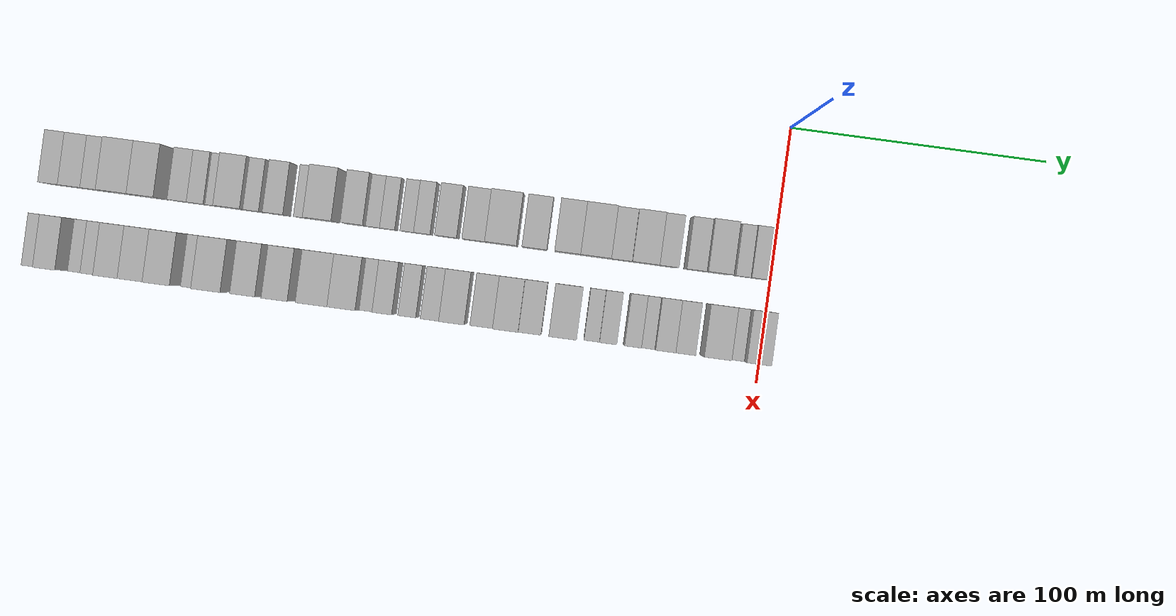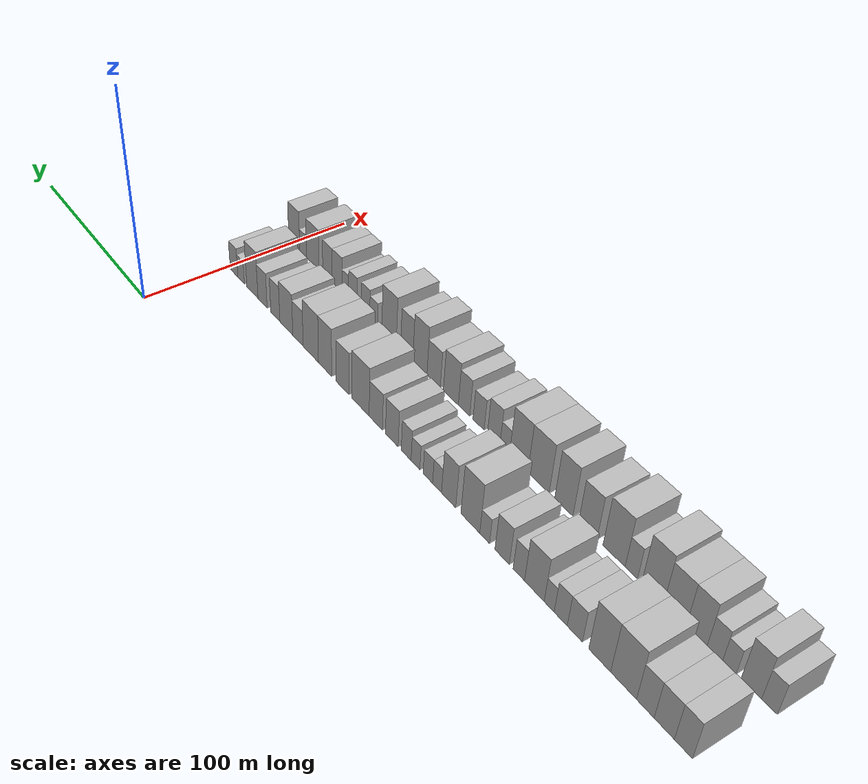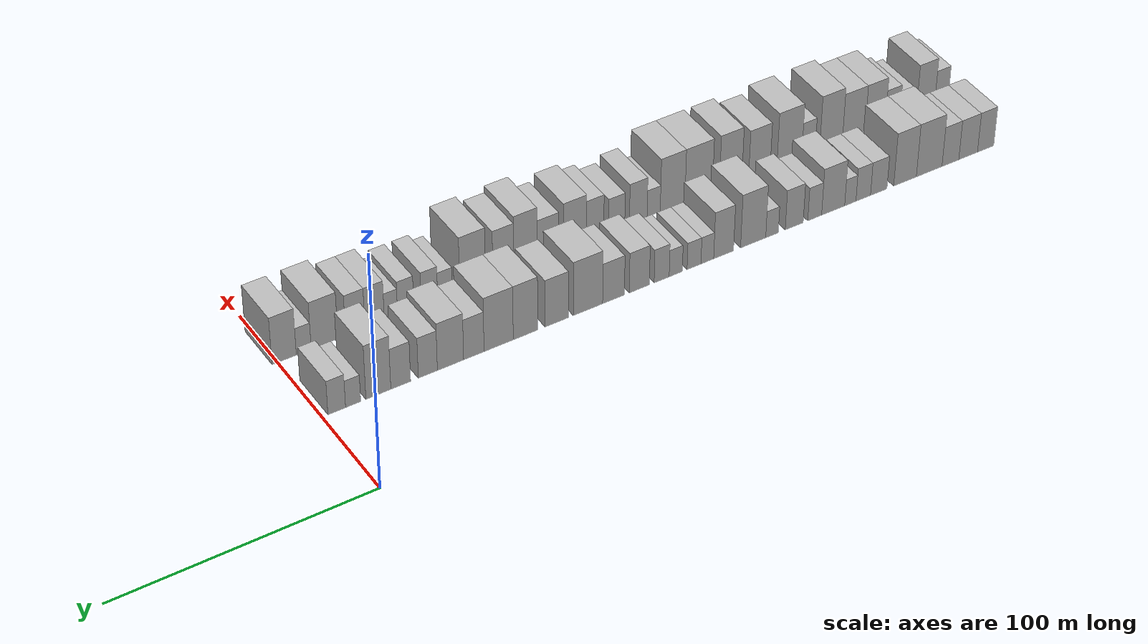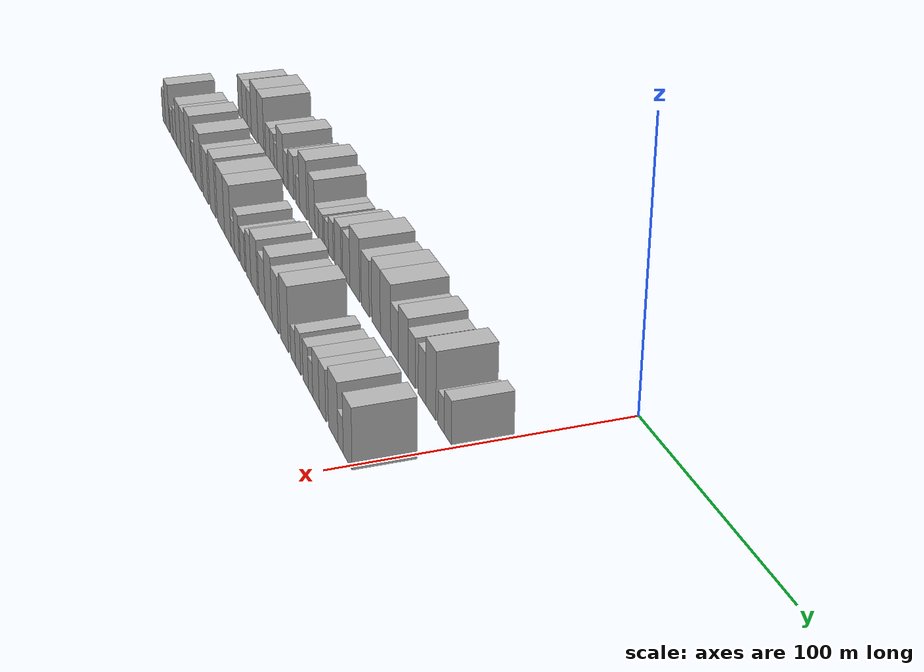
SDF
<sdf version="1.6">
 <world name="default">
  <model name="building_1">
   <static>1</static>
   <pose>50.0000 -277.2556 0 0.000000 0.000000 0.000000</pose>
   <link name="link">
    <pose>0 0 9.00 0 0 0</pose>
    <collision name="collision"><geometry><box><size>20.0000 7.4887 18.0000</size></box></geometry></collision>
    <visual name="visual">
     <cast_shadows>0</cast_shadows>
     <geometry><box><size>20.0000 7.4887 18.0000</size></box></geometry>
     <material>
      <script>
       <uri>model://HANNAS_wall/materials/scripts</uri>
       <uri>model://HANNAS_wall/materials/textures</uri>
       <name>vrc/HANNAS_wall</name>
      </script>
     </material>
    </visual>
   </link>
  </model>
  <model name="building_2">
   <static>1</static>
   <pose>50.0000 -269.2363 0 0.000000 0.000000 0.000000</pose>
   <link name="link">
    <pose>0 0 9.00 0 0 0</pose>
    <collision name="collision"><geometry><box><size>20.0000 8.5500 18.0000</size></box></geometry></collision>
    <visual name="visual">
     <cast_shadows>0</cast_shadows>
     <geometry><box><size>20.0000 8.5500 18.0000</size></box></geometry>
     <material>
      <script>
       <uri>model://HANNAS_wall/materials/scripts</uri>
       <uri>model://HANNAS_wall/materials/textures</uri>
       <name>vrc/HANNAS_wall</name>
      </script>
     </material>
    </visual>
   </link>
  </model>
  <model name="building_3">
   <static>1</static>
   <pose>50.0000 -261.1356 0 0.000000 0.000000 0.000000</pose>
   <link name="link">
    <pose>0 0 9.00 0 0 0</pose>
    <collision name="collision"><geometry><box><size>20.0000 7.6514 18.0000</size></box></geometry></collision>
    <visual name="visual">
     <cast_shadows>0</cast_shadows>
     <geometry><box><size>20.0000 7.6514 18.0000</size></box></geometry>
     <material>
      <script>
       <uri>model://HANNAS_wall/materials/scripts</uri>
       <uri>model://HANNAS_wall/materials/textures</uri>
       <name>vrc/HANNAS_wall</name>
      </script>
     </material>
    </visual>
   </link>
  </model>
  <model name="building_4">
   <static>1</static>
   <pose>50.0000 -251.5059 0 0.000000 0.000000 0.000000</pose>
   <link name="link">
    <pose>0 0 12.00 0 0 0</pose>
    <collision name="collision"><geometry><box><size>20.0000 11.6080 24.0000</size></box></geometry></collision>
    <visual name="visual">
     <cast_shadows>0</cast_shadows>
     <geometry><box><size>20.0000 11.6080 24.0000</size></box></geometry>
     <material>
      <script>
       <uri>model://HANNAS_wall/materials/scripts</uri>
       <uri>model://HANNAS_wall/materials/textures</uri>
       <name>vrc/HANNAS_wall</name>
      </script>
     </material>
    </visual>
   </link>
  </model>
  <model name="building_5">
   <static>1</static>
   <pose>50.0000 -240.6111 0 0.000000 0.000000 0.000000</pose>
   <link name="link">
    <pose>0 0 12.00 0 0 0</pose>
    <collision name="collision"><geometry><box><size>20.0000 10.1817 24.0000</size></box></geometry></collision>
    <visual name="visual">
     <cast_shadows>0</cast_shadows>
     <geometry><box><size>20.0000 10.1817 24.0000</size></box></geometry>
     <material>
      <script>
       <uri>model://HANNAS_wall/materials/scripts</uri>
       <uri>model://HANNAS_wall/materials/textures</uri>
       <name>vrc/HANNAS_wall</name>
      </script>
     </material>
    </visual>
   </link>
  </model>
  <model name="building_6">
   <static>1</static>
   <pose>50.0000 -228.8419 0 0.000000 0.000000 0.000000</pose>
   <link name="link">
    <pose>0 0 7.50 0 0 0</pose>
    <collision name="collision"><geometry><box><size>20.0000 7.3566 15.0000</size></box></geometry></collision>
    <visual name="visual">
     <cast_shadows>0</cast_shadows>
     <geometry><box><size>20.0000 7.3566 15.0000</size></box></geometry>
     <material>
      <script>
       <uri>model://HANNAS_wall/materials/scripts</uri>
       <uri>model://HANNAS_wall/materials/textures</uri>
       <name>vrc/HANNAS_wall</name>
      </script>
     </material>
    </visual>
   </link>
  </model>
  <model name="building_7">
   <static>1</static>
   <pose>50.0000 -221.9343 0 0.000000 0.000000 0.000000</pose>
   <link name="link">
    <pose>0 0 7.50 0 0 0</pose>
    <collision name="collision"><geometry><box><size>20.0000 6.4588 15.0000</size></box></geometry></collision>
    <visual name="visual">
     <cast_shadows>0</cast_shadows>
     <geometry><box><size>20.0000 6.4588 15.0000</size></box></geometry>
     <material>
      <script>
       <uri>model://HANNAS_wall/materials/scripts</uri>
       <uri>model://HANNAS_wall/materials/textures</uri>
       <name>vrc/HANNAS_wall</name>
      </script>
     </material>
    </visual>
   </link>
  </model>
  <model name="building_8">
   <static>1</static>
   <pose>50.0000 -216.2119 0 0.000000 0.000000 0.000000</pose>
   <link name="link">
    <pose>0 0 6.00 0 0 0</pose>
    <collision name="collision"><geometry><box><size>20.0000 4.9858 12.0000</size></box></geometry></collision>
    <visual name="visual">
     <cast_shadows>0</cast_shadows>
     <geometry><box><size>20.0000 4.9858 12.0000</size></box></geometry>
     <material>
      <script>
       <uri>model://HANNAS_wall/materials/scripts</uri>
       <uri>model://HANNAS_wall/materials/textures</uri>
       <name>vrc/HANNAS_wall</name>
      </script>
     </material>
    </visual>
   </link>
  </model>
  <model name="building_9">
   <static>1</static>
   <pose>50.0000 -208.6545 0 0.000000 0.000000 0.000000</pose>
   <link name="link">
    <pose>0 0 10.50 0 0 0</pose>
    <collision name="collision"><geometry><box><size>20.0000 10.1291 21.0000</size></box></geometry></collision>
    <visual name="visual">
     <cast_shadows>0</cast_shadows>
     <geometry><box><size>20.0000 10.1291 21.0000</size></box></geometry>
     <material>
      <script>
       <uri>model://HANNAS_wall/materials/scripts</uri>
       <uri>model://HANNAS_wall/materials/textures</uri>
       <name>vrc/HANNAS_wall</name>
      </script>
     </material>
    </visual>
   </link>
  </model>
  <model name="building_10">
   <static>1</static>
   <pose>50.0000 -200.5649 0 0.000000 0.000000 0.000000</pose>
   <link name="link">
    <pose>0 0 7.50 0 0 0</pose>
    <collision name="collision"><geometry><box><size>20.0000 6.0502 15.0000</size></box></geometry></collision>
    <visual name="visual">
     <cast_shadows>0</cast_shadows>
     <geometry><box><size>20.0000 6.0502 15.0000</size></box></geometry>
     <material>
      <script>
       <uri>model://HANNAS_wall/materials/scripts</uri>
       <uri>model://HANNAS_wall/materials/textures</uri>
       <name>vrc/HANNAS_wall</name>
      </script>
     </material>
    </visual>
   </link>
  </model>
  <model name="building_11">
   <static>1</static>
   <pose>50.0000 -191.6332 0 0.000000 0.000000 0.000000</pose>
   <link name="link">
    <pose>0 0 9.00 0 0 0</pose>
    <collision name="collision"><geometry><box><size>20.0000 7.8131 18.0000</size></box></geometry></collision>
    <visual name="visual">
     <cast_shadows>0</cast_shadows>
     <geometry><box><size>20.0000 7.8131 18.0000</size></box></geometry>
     <material>
      <script>
       <uri>model://HANNAS_wall/materials/scripts</uri>
       <uri>model://HANNAS_wall/materials/textures</uri>
       <name>vrc/HANNAS_wall</name>
      </script>
     </material>
    </visual>
   </link>
  </model>
  <model name="building_12">
   <static>1</static>
   <pose>50.0000 -182.0046 0 0.000000 0.000000 0.000000</pose>
   <link name="link">
    <pose>0 0 6.00 0 0 0</pose>
    <collision name="collision"><geometry><box><size>20.0000 5.4442 12.0000</size></box></geometry></collision>
    <visual name="visual">
     <cast_shadows>0</cast_shadows>
     <geometry><box><size>20.0000 5.4442 12.0000</size></box></geometry>
     <material>
      <script>
       <uri>model://HANNAS_wall/materials/scripts</uri>
       <uri>model://HANNAS_wall/materials/textures</uri>
       <name>vrc/HANNAS_wall</name>
      </script>
     </material>
    </visual>
   </link>
  </model>
  <model name="building_13">
   <static>1</static>
   <pose>50.0000 -173.8829 0 0.000000 0.000000 0.000000</pose>
   <link name="link">
    <pose>0 0 12.00 0 0 0</pose>
    <collision name="collision"><geometry><box><size>20.0000 10.7992 24.0000</size></box></geometry></collision>
    <visual name="visual">
     <cast_shadows>0</cast_shadows>
     <geometry><box><size>20.0000 10.7992 24.0000</size></box></geometry>
     <material>
      <script>
       <uri>model://HANNAS_wall/materials/scripts</uri>
       <uri>model://HANNAS_wall/materials/textures</uri>
       <name>vrc/HANNAS_wall</name>
      </script>
     </material>
    </visual>
   </link>
  </model>
  <model name="building_14">
   <static>1</static>
   <pose>50.0000 -161.2518 0 0.000000 0.000000 0.000000</pose>
   <link name="link">
    <pose>0 0 10.50 0 0 0</pose>
    <collision name="collision"><geometry><box><size>20.0000 8.4629 21.0000</size></box></geometry></collision>
    <visual name="visual">
     <cast_shadows>0</cast_shadows>
     <geometry><box><size>20.0000 8.4629 21.0000</size></box></geometry>
     <material>
      <script>
       <uri>model://HANNAS_wall/materials/scripts</uri>
       <uri>model://HANNAS_wall/materials/textures</uri>
       <name>vrc/HANNAS_wall</name>
      </script>
     </material>
    </visual>
   </link>
  </model>
  <model name="building_15">
   <static>1</static>
   <pose>50.0000 -154.3283 0 0.000000 0.000000 0.000000</pose>
   <link name="link">
    <pose>0 0 6.00 0 0 0</pose>
    <collision name="collision"><geometry><box><size>20.0000 5.3842 12.0000</size></box></geometry></collision>
    <visual name="visual">
     <cast_shadows>0</cast_shadows>
     <geometry><box><size>20.0000 5.3842 12.0000</size></box></geometry>
     <material>
      <script>
       <uri>model://HANNAS_wall/materials/scripts</uri>
       <uri>model://HANNAS_wall/materials/textures</uri>
       <name>vrc/HANNAS_wall</name>
      </script>
     </material>
    </visual>
   </link>
  </model>
  <model name="building_16">
   <static>1</static>
   <pose>50.0000 -148.7081 0 0.000000 0.000000 0.000000</pose>
   <link name="link">
    <pose>0 0 6.00 0 0 0</pose>
    <collision name="collision"><geometry><box><size>20.0000 5.8562 12.0000</size></box></geometry></collision>
    <visual name="visual">
     <cast_shadows>0</cast_shadows>
     <geometry><box><size>20.0000 5.8562 12.0000</size></box></geometry>
     <material>
      <script>
       <uri>model://HANNAS_wall/materials/scripts</uri>
       <uri>model://HANNAS_wall/materials/textures</uri>
       <name>vrc/HANNAS_wall</name>
      </script>
     </material>
    </visual>
   </link>
  </model>
  <model name="building_17">
   <static>1</static>
   <pose>50.0000 -141.0140 0 0.000000 0.000000 0.000000</pose>
   <link name="link">
    <pose>0 0 6.00 0 0 0</pose>
    <collision name="collision"><geometry><box><size>20.0000 5.5320 12.0000</size></box></geometry></collision>
    <visual name="visual">
     <cast_shadows>0</cast_shadows>
     <geometry><box><size>20.0000 5.5320 12.0000</size></box></geometry>
     <material>
      <script>
       <uri>model://HANNAS_wall/materials/scripts</uri>
       <uri>model://HANNAS_wall/materials/textures</uri>
       <name>vrc/HANNAS_wall</name>
      </script>
     </material>
    </visual>
   </link>
  </model>
  <model name="building_18">
   <static>1</static>
   <pose>50.0000 -135.1120 0 0.000000 0.000000 0.000000</pose>
   <link name="link">
    <pose>0 0 7.50 0 0 0</pose>
    <collision name="collision"><geometry><box><size>20.0000 6.2721 15.0000</size></box></geometry></collision>
    <visual name="visual">
     <cast_shadows>0</cast_shadows>
     <geometry><box><size>20.0000 6.2721 15.0000</size></box></geometry>
     <material>
      <script>
       <uri>model://HANNAS_wall/materials/scripts</uri>
       <uri>model://HANNAS_wall/materials/textures</uri>
       <name>vrc/HANNAS_wall</name>
      </script>
     </material>
    </visual>
   </link>
  </model>
  <model name="building_19">
   <static>1</static>
   <pose>50.0000 -125.7996 0 0.000000 0.000000 0.000000</pose>
   <link name="link">
    <pose>0 0 9.00 0 0 0</pose>
    <collision name="collision"><geometry><box><size>20.0000 8.3525 18.0000</size></box></geometry></collision>
    <visual name="visual">
     <cast_shadows>0</cast_shadows>
     <geometry><box><size>20.0000 8.3525 18.0000</size></box></geometry>
     <material>
      <script>
       <uri>model://HANNAS_wall/materials/scripts</uri>
       <uri>model://HANNAS_wall/materials/textures</uri>
       <name>vrc/HANNAS_wall</name>
      </script>
     </material>
    </visual>
   </link>
  </model>
  <model name="building_20">
   <static>1</static>
   <pose>50.0000 -115.1325 0 0.000000 0.000000 0.000000</pose>
   <link name="link">
    <pose>0 0 9.00 0 0 0</pose>
    <collision name="collision"><geometry><box><size>20.0000 8.9817 18.0000</size></box></geometry></collision>
    <visual name="visual">
     <cast_shadows>0</cast_shadows>
     <geometry><box><size>20.0000 8.9817 18.0000</size></box></geometry>
     <material>
      <script>
       <uri>model://HANNAS_wall/materials/scripts</uri>
       <uri>model://HANNAS_wall/materials/textures</uri>
       <name>vrc/HANNAS_wall</name>
      </script>
     </material>
    </visual>
   </link>
  </model>
  <model name="building_21">
   <static>1</static>
   <pose>50.0000 -104.6449 0 0.000000 0.000000 0.000000</pose>
   <link name="link">
    <pose>0 0 12.00 0 0 0</pose>
    <collision name="collision"><geometry><box><size>20.0000 11.9935 24.0000</size></box></geometry></collision>
    <visual name="visual">
     <cast_shadows>0</cast_shadows>
     <geometry><box><size>20.0000 11.9935 24.0000</size></box></geometry>
     <material>
      <script>
       <uri>model://HANNAS_wall/materials/scripts</uri>
       <uri>model://HANNAS_wall/materials/textures</uri>
       <name>vrc/HANNAS_wall</name>
      </script>
     </material>
    </visual>
   </link>
  </model>
  <model name="building_22">
   <static>1</static>
   <pose>50.0000 -91.9329 0 0.000000 0.000000 0.000000</pose>
   <link name="link">
    <pose>0 0 10.50 0 0 0</pose>
    <collision name="collision"><geometry><box><size>20.0000 9.4305 21.0000</size></box></geometry></collision>
    <visual name="visual">
     <cast_shadows>0</cast_shadows>
     <geometry><box><size>20.0000 9.4305 21.0000</size></box></geometry>
     <material>
      <script>
       <uri>model://HANNAS_wall/materials/scripts</uri>
       <uri>model://HANNAS_wall/materials/textures</uri>
       <name>vrc/HANNAS_wall</name>
      </script>
     </material>
    </visual>
   </link>
  </model>
  <model name="building_23">
   <static>1</static>
   <pose>50.0000 -79.3031 0 0.000000 0.000000 0.000000</pose>
   <link name="link">
    <pose>0 0 12.00 0 0 0</pose>
    <collision name="collision"><geometry><box><size>20.0000 9.8292 24.0000</size></box></geometry></collision>
    <visual name="visual">
     <cast_shadows>0</cast_shadows>
     <geometry><box><size>20.0000 9.8292 24.0000</size></box></geometry>
     <material>
      <script>
       <uri>model://HANNAS_wall/materials/scripts</uri>
       <uri>model://HANNAS_wall/materials/textures</uri>
       <name>vrc/HANNAS_wall</name>
      </script>
     </material>
    </visual>
   </link>
  </model>
  <model name="building_24">
   <static>1</static>
   <pose>50.0000 -68.5681 0 0.000000 0.000000 0.000000</pose>
   <link name="link">
    <pose>0 0 12.00 0 0 0</pose>
    <collision name="collision"><geometry><box><size>20.0000 11.6407 24.0000</size></box></geometry></collision>
    <visual name="visual">
     <cast_shadows>0</cast_shadows>
     <geometry><box><size>20.0000 11.6407 24.0000</size></box></geometry>
     <material>
      <script>
       <uri>model://HANNAS_wall/materials/scripts</uri>
       <uri>model://HANNAS_wall/materials/textures</uri>
       <name>vrc/HANNAS_wall</name>
      </script>
     </material>
    </visual>
   </link>
  </model>
  <model name="building_25">
   <static>1</static>
   <pose>50.0000 -58.7035 0 0.000000 0.000000 0.000000</pose>
   <link name="link">
    <pose>0 0 9.00 0 0 0</pose>
    <collision name="collision"><geometry><box><size>20.0000 8.0885 18.0000</size></box></geometry></collision>
    <visual name="visual">
     <cast_shadows>0</cast_shadows>
     <geometry><box><size>20.0000 8.0885 18.0000</size></box></geometry>
     <material>
      <script>
       <uri>model://HANNAS_wall/materials/scripts</uri>
       <uri>model://HANNAS_wall/materials/textures</uri>
       <name>vrc/HANNAS_wall</name>
      </script>
     </material>
    </visual>
   </link>
  </model>
  <model name="building_26">
   <static>1</static>
   <pose>50.0000 -49.4943 0 0.000000 0.000000 0.000000</pose>
   <link name="link">
    <pose>0 0 10.50 0 0 0</pose>
    <collision name="collision"><geometry><box><size>20.0000 10.3299 21.0000</size></box></geometry></collision>
    <visual name="visual">
     <cast_shadows>0</cast_shadows>
     <geometry><box><size>20.0000 10.3299 21.0000</size></box></geometry>
     <material>
      <script>
       <uri>model://HANNAS_wall/materials/scripts</uri>
       <uri>model://HANNAS_wall/materials/textures</uri>
       <name>vrc/HANNAS_wall</name>
      </script>
     </material>
    </visual>
   </link>
  </model>
  <model name="building_27">
   <static>1</static>
   <pose>50.0000 -40.6053 0 0.000000 0.000000 0.000000</pose>
   <link name="link">
    <pose>0 0 9.00 0 0 0</pose>
    <collision name="collision"><geometry><box><size>20.0000 7.4480 18.0000</size></box></geometry></collision>
    <visual name="visual">
     <cast_shadows>0</cast_shadows>
     <geometry><box><size>20.0000 7.4480 18.0000</size></box></geometry>
     <material>
      <script>
       <uri>model://HANNAS_wall/materials/scripts</uri>
       <uri>model://HANNAS_wall/materials/textures</uri>
       <name>vrc/HANNAS_wall</name>
      </script>
     </material>
    </visual>
   </link>
  </model>
  <model name="building_28">
   <static>1</static>
   <pose>50.0000 -30.0439 0 0.000000 0.000000 0.000000</pose>
   <link name="link">
    <pose>0 0 9.00 0 0 0</pose>
    <collision name="collision"><geometry><box><size>20.0000 7.6748 18.0000</size></box></geometry></collision>
    <visual name="visual">
     <cast_shadows>0</cast_shadows>
     <geometry><box><size>20.0000 7.6748 18.0000</size></box></geometry>
     <material>
      <script>
       <uri>model://HANNAS_wall/materials/scripts</uri>
       <uri>model://HANNAS_wall/materials/textures</uri>
       <name>vrc/HANNAS_wall</name>
      </script>
     </material>
    </visual>
   </link>
  </model>
  <model name="building_29">
   <static>1</static>
   <pose>50.0000 -21.3962 0 0.000000 0.000000 0.000000</pose>
   <link name="link">
    <pose>0 0 12.00 0 0 0</pose>
    <collision name="collision"><geometry><box><size>20.0000 9.6205 24.0000</size></box></geometry></collision>
    <visual name="visual">
     <cast_shadows>0</cast_shadows>
     <geometry><box><size>20.0000 9.6205 24.0000</size></box></geometry>
     <material>
      <script>
       <uri>model://HANNAS_wall/materials/scripts</uri>
       <uri>model://HANNAS_wall/materials/textures</uri>
       <name>vrc/HANNAS_wall</name>
      </script>
     </material>
    </visual>
   </link>
  </model>
  <model name="building_30">
   <static>1</static>
   <pose>50.0000 -11.6891 0 0.000000 0.000000 0.000000</pose>
   <link name="link">
    <pose>0 0 6.00 0 0 0</pose>
    <collision name="collision"><geometry><box><size>20.0000 5.7937 12.0000</size></box></geometry></collision>
    <visual name="visual">
     <cast_shadows>0</cast_shadows>
     <geometry><box><size>20.0000 5.7937 12.0000</size></box></geometry>
     <material>
      <script>
       <uri>model://HANNAS_wall/materials/scripts</uri>
       <uri>model://HANNAS_wall/materials/textures</uri>
       <name>vrc/HANNAS_wall</name>
      </script>
     </material>
    </visual>
   </link>
  </model>
  <model name="building_31">
   <static>1</static>
   <pose>50.0000 -5.4280 0 0.000000 0.000000 0.000000</pose>
   <link name="link">
    <pose>0 0 7.50 0 0 0</pose>
    <collision name="collision"><geometry><box><size>20.0000 6.7285 15.0000</size></box></geometry></collision>
    <visual name="visual">
     <cast_shadows>0</cast_shadows>
     <geometry><box><size>20.0000 6.7285 15.0000</size></box></geometry>
     <material>
      <script>
       <uri>model://HANNAS_wall/materials/scripts</uri>
       <uri>model://HANNAS_wall/materials/textures</uri>
       <name>vrc/HANNAS_wall</name>
      </script>
     </material>
    </visual>
   </link>
  </model>
  <model name="building_64">
   <static>1</static>
   <pose>82.0000 -280.8417 0 0.000000 0.000000 0.000000</pose>
   <link name="link">
    <pose>0 0 7.50 0 0 0</pose>
    <collision name="collision"><geometry><box><size>20.0000 6.3165 15.0000</size></box></geometry></collision>
    <visual name="visual">
     <cast_shadows>0</cast_shadows>
     <geometry><box><size>20.0000 6.3165 15.0000</size></box></geometry>
     <material>
      <script>
       <uri>model://HANNAS_wall/materials/scripts</uri>
       <uri>model://HANNAS_wall/materials/textures</uri>
       <name>vrc/HANNAS_wall</name>
      </script>
     </material>
    </visual>
   </link>
  </model>
  <model name="building_65">
   <static>1</static>
   <pose>82.0000 -273.4562 0 0.000000 0.000000 0.000000</pose>
   <link name="link">
    <pose>0 0 10.50 0 0 0</pose>
    <collision name="collision"><geometry><box><size>20.0000 8.4546 21.0000</size></box></geometry></collision>
    <visual name="visual">
     <cast_shadows>0</cast_shadows>
     <geometry><box><size>20.0000 8.4546 21.0000</size></box></geometry>
     <material>
      <script>
       <uri>model://HANNAS_wall/materials/scripts</uri>
       <uri>model://HANNAS_wall/materials/textures</uri>
       <name>vrc/HANNAS_wall</name>
      </script>
     </material>
    </visual>
   </link>
  </model>
  <model name="building_66">
   <static>1</static>
   <pose>82.0000 -264.3822 0 0.000000 0.000000 0.000000</pose>
   <link name="link">
    <pose>0 0 6.00 0 0 0</pose>
    <collision name="collision"><geometry><box><size>20.0000 5.6933 12.0000</size></box></geometry></collision>
    <visual name="visual">
     <cast_shadows>0</cast_shadows>
     <geometry><box><size>20.0000 5.6933 12.0000</size></box></geometry>
     <material>
      <script>
       <uri>model://HANNAS_wall/materials/scripts</uri>
       <uri>model://HANNAS_wall/materials/textures</uri>
       <name>vrc/HANNAS_wall</name>
      </script>
     </material>
    </visual>
   </link>
  </model>
  <model name="building_67">
   <static>1</static>
   <pose>82.0000 -258.2056 0 0.000000 0.000000 0.000000</pose>
   <link name="link">
    <pose>0 0 7.50 0 0 0</pose>
    <collision name="collision"><geometry><box><size>20.0000 6.6600 15.0000</size></box></geometry></collision>
    <visual name="visual">
     <cast_shadows>0</cast_shadows>
     <geometry><box><size>20.0000 6.6600 15.0000</size></box></geometry>
     <material>
      <script>
       <uri>model://HANNAS_wall/materials/scripts</uri>
       <uri>model://HANNAS_wall/materials/textures</uri>
       <name>vrc/HANNAS_wall</name>
      </script>
     </material>
    </visual>
   </link>
  </model>
  <model name="building_68">
   <static>1</static>
   <pose>82.0000 -250.2666 0 0.000000 0.000000 0.000000</pose>
   <link name="link">
    <pose>0 0 10.50 0 0 0</pose>
    <collision name="collision"><geometry><box><size>20.0000 9.2180 21.0000</size></box></geometry></collision>
    <visual name="visual">
     <cast_shadows>0</cast_shadows>
     <geometry><box><size>20.0000 9.2180 21.0000</size></box></geometry>
     <material>
      <script>
       <uri>model://HANNAS_wall/materials/scripts</uri>
       <uri>model://HANNAS_wall/materials/textures</uri>
       <name>vrc/HANNAS_wall</name>
      </script>
     </material>
    </visual>
   </link>
  </model>
  <model name="building_69">
   <static>1</static>
   <pose>82.0000 -240.5264 0 0.000000 0.000000 0.000000</pose>
   <link name="link">
    <pose>0 0 10.50 0 0 0</pose>
    <collision name="collision"><geometry><box><size>20.0000 10.2624 21.0000</size></box></geometry></collision>
    <visual name="visual">
     <cast_shadows>0</cast_shadows>
     <geometry><box><size>20.0000 10.2624 21.0000</size></box></geometry>
     <material>
      <script>
       <uri>model://HANNAS_wall/materials/scripts</uri>
       <uri>model://HANNAS_wall/materials/textures</uri>
       <name>vrc/HANNAS_wall</name>
      </script>
     </material>
    </visual>
   </link>
  </model>
  <model name="building_70">
   <static>1</static>
   <pose>82.0000 -230.2431 0 0.000000 0.000000 0.000000</pose>
   <link name="link">
    <pose>0 0 12.00 0 0 0</pose>
    <collision name="collision"><geometry><box><size>20.0000 10.3042 24.0000</size></box></geometry></collision>
    <visual name="visual">
     <cast_shadows>0</cast_shadows>
     <geometry><box><size>20.0000 10.3042 24.0000</size></box></geometry>
     <material>
      <script>
       <uri>model://HANNAS_wall/materials/scripts</uri>
       <uri>model://HANNAS_wall/materials/textures</uri>
       <name>vrc/HANNAS_wall</name>
      </script>
     </material>
    </visual>
   </link>
  </model>
  <model name="building_71">
   <static>1</static>
   <pose>82.0000 -220.0906 0 0.000000 0.000000 0.000000</pose>
   <link name="link">
    <pose>0 0 7.50 0 0 0</pose>
    <collision name="collision"><geometry><box><size>20.0000 6.0007 15.0000</size></box></geometry></collision>
    <visual name="visual">
     <cast_shadows>0</cast_shadows>
     <geometry><box><size>20.0000 6.0007 15.0000</size></box></geometry>
     <material>
      <script>
       <uri>model://HANNAS_wall/materials/scripts</uri>
       <uri>model://HANNAS_wall/materials/textures</uri>
       <name>vrc/HANNAS_wall</name>
      </script>
     </material>
    </visual>
   </link>
  </model>
  <model name="building_72">
   <static>1</static>
   <pose>82.0000 -211.5653 0 0.000000 0.000000 0.000000</pose>
   <link name="link">
    <pose>0 0 12.00 0 0 0</pose>
    <collision name="collision"><geometry><box><size>20.0000 11.0500 24.0000</size></box></geometry></collision>
    <visual name="visual">
     <cast_shadows>0</cast_shadows>
     <geometry><box><size>20.0000 11.0500 24.0000</size></box></geometry>
     <material>
      <script>
       <uri>model://HANNAS_wall/materials/scripts</uri>
       <uri>model://HANNAS_wall/materials/textures</uri>
       <name>vrc/HANNAS_wall</name>
      </script>
     </material>
    </visual>
   </link>
  </model>
  <model name="building_73">
   <static>1</static>
   <pose>82.0000 -198.3012 0 0.000000 0.000000 0.000000</pose>
   <link name="link">
    <pose>0 0 10.50 0 0 0</pose>
    <collision name="collision"><geometry><box><size>20.0000 9.4782 21.0000</size></box></geometry></collision>
    <visual name="visual">
     <cast_shadows>0</cast_shadows>
     <geometry><box><size>20.0000 9.4782 21.0000</size></box></geometry>
     <material>
      <script>
       <uri>model://HANNAS_wall/materials/scripts</uri>
       <uri>model://HANNAS_wall/materials/textures</uri>
       <name>vrc/HANNAS_wall</name>
      </script>
     </material>
    </visual>
   </link>
  </model>
  <model name="building_74">
   <static>1</static>
   <pose>82.0000 -185.6444 0 0.000000 0.000000 0.000000</pose>
   <link name="link">
    <pose>0 0 12.00 0 0 0</pose>
    <collision name="collision"><geometry><box><size>20.0000 9.8352 24.0000</size></box></geometry></collision>
    <visual name="visual">
     <cast_shadows>0</cast_shadows>
     <geometry><box><size>20.0000 9.8352 24.0000</size></box></geometry>
     <material>
      <script>
       <uri>model://HANNAS_wall/materials/scripts</uri>
       <uri>model://HANNAS_wall/materials/textures</uri>
       <name>vrc/HANNAS_wall</name>
      </script>
     </material>
    </visual>
   </link>
  </model>
  <model name="building_75">
   <static>1</static>
   <pose>82.0000 -171.7548 0 0.000000 0.000000 0.000000</pose>
   <link name="link">
    <pose>0 0 12.00 0 0 0</pose>
    <collision name="collision"><geometry><box><size>20.0000 11.9441 24.0000</size></box></geometry></collision>
    <visual name="visual">
     <cast_shadows>0</cast_shadows>
     <geometry><box><size>20.0000 11.9441 24.0000</size></box></geometry>
     <material>
      <script>
       <uri>model://HANNAS_wall/materials/scripts</uri>
       <uri>model://HANNAS_wall/materials/textures</uri>
       <name>vrc/HANNAS_wall</name>
      </script>
     </material>
    </visual>
   </link>
  </model>
  <model name="building_76">
   <static>1</static>
   <pose>82.0000 -160.4772 0 0.000000 0.000000 0.000000</pose>
   <link name="link">
    <pose>0 0 12.00 0 0 0</pose>
    <collision name="collision"><geometry><box><size>20.0000 10.6111 24.0000</size></box></geometry></collision>
    <visual name="visual">
     <cast_shadows>0</cast_shadows>
     <geometry><box><size>20.0000 10.6111 24.0000</size></box></geometry>
     <material>
      <script>
       <uri>model://HANNAS_wall/materials/scripts</uri>
       <uri>model://HANNAS_wall/materials/textures</uri>
       <name>vrc/HANNAS_wall</name>
      </script>
     </material>
    </visual>
   </link>
  </model>
  <model name="building_77">
   <static>1</static>
   <pose>82.0000 -152.3550 0 0.000000 0.000000 0.000000</pose>
   <link name="link">
    <pose>0 0 6.00 0 0 0</pose>
    <collision name="collision"><geometry><box><size>20.0000 5.6334 12.0000</size></box></geometry></collision>
    <visual name="visual">
     <cast_shadows>0</cast_shadows>
     <geometry><box><size>20.0000 5.6334 12.0000</size></box></geometry>
     <material>
      <script>
       <uri>model://HANNAS_wall/materials/scripts</uri>
       <uri>model://HANNAS_wall/materials/textures</uri>
       <name>vrc/HANNAS_wall</name>
      </script>
     </material>
    </visual>
   </link>
  </model>
  <model name="building_78">
   <static>1</static>
   <pose>82.0000 -145.7828 0 0.000000 0.000000 0.000000</pose>
   <link name="link">
    <pose>0 0 9.00 0 0 0</pose>
    <collision name="collision"><geometry><box><size>20.0000 7.5109 18.0000</size></box></geometry></collision>
    <visual name="visual">
     <cast_shadows>0</cast_shadows>
     <geometry><box><size>20.0000 7.5109 18.0000</size></box></geometry>
     <material>
      <script>
       <uri>model://HANNAS_wall/materials/scripts</uri>
       <uri>model://HANNAS_wall/materials/textures</uri>
       <name>vrc/HANNAS_wall</name>
      </script>
     </material>
    </visual>
   </link>
  </model>
  <model name="building_79">
   <static>1</static>
   <pose>82.0000 -136.5919 0 0.000000 0.000000 0.000000</pose>
   <link name="link">
    <pose>0 0 7.50 0 0 0</pose>
    <collision name="collision"><geometry><box><size>20.0000 6.8709 15.0000</size></box></geometry></collision>
    <visual name="visual">
     <cast_shadows>0</cast_shadows>
     <geometry><box><size>20.0000 6.8709 15.0000</size></box></geometry>
     <material>
      <script>
       <uri>model://HANNAS_wall/materials/scripts</uri>
       <uri>model://HANNAS_wall/materials/textures</uri>
       <name>vrc/HANNAS_wall</name>
      </script>
     </material>
    </visual>
   </link>
  </model>
  <model name="building_80">
   <static>1</static>
   <pose>82.0000 -127.5436 0 0.000000 0.000000 0.000000</pose>
   <link name="link">
    <pose>0 0 9.00 0 0 0</pose>
    <collision name="collision"><geometry><box><size>20.0000 7.2256 18.0000</size></box></geometry></collision>
    <visual name="visual">
     <cast_shadows>0</cast_shadows>
     <geometry><box><size>20.0000 7.2256 18.0000</size></box></geometry>
     <material>
      <script>
       <uri>model://HANNAS_wall/materials/scripts</uri>
       <uri>model://HANNAS_wall/materials/textures</uri>
       <name>vrc/HANNAS_wall</name>
      </script>
     </material>
    </visual>
   </link>
  </model>
  <model name="building_81">
   <static>1</static>
   <pose>82.0000 -119.0979 0 0.000000 0.000000 0.000000</pose>
   <link name="link">
    <pose>0 0 10.50 0 0 0</pose>
    <collision name="collision"><geometry><box><size>20.0000 9.6659 21.0000</size></box></geometry></collision>
    <visual name="visual">
     <cast_shadows>0</cast_shadows>
     <geometry><box><size>20.0000 9.6659 21.0000</size></box></geometry>
     <material>
      <script>
       <uri>model://HANNAS_wall/materials/scripts</uri>
       <uri>model://HANNAS_wall/materials/textures</uri>
       <name>vrc/HANNAS_wall</name>
      </script>
     </material>
    </visual>
   </link>
  </model>
  <model name="building_82">
   <static>1</static>
   <pose>82.0000 -107.8352 0 0.000000 0.000000 0.000000</pose>
   <link name="link">
    <pose>0 0 9.00 0 0 0</pose>
    <collision name="collision"><geometry><box><size>20.0000 8.8596 18.0000</size></box></geometry></collision>
    <visual name="visual">
     <cast_shadows>0</cast_shadows>
     <geometry><box><size>20.0000 8.8596 18.0000</size></box></geometry>
     <material>
      <script>
       <uri>model://HANNAS_wall/materials/scripts</uri>
       <uri>model://HANNAS_wall/materials/textures</uri>
       <name>vrc/HANNAS_wall</name>
      </script>
     </material>
    </visual>
   </link>
  </model>
  <model name="building_83">
   <static>1</static>
   <pose>82.0000 -98.5753 0 0.000000 0.000000 0.000000</pose>
   <link name="link">
    <pose>0 0 12.00 0 0 0</pose>
    <collision name="collision"><geometry><box><size>20.0000 9.6600 24.0000</size></box></geometry></collision>
    <visual name="visual">
     <cast_shadows>0</cast_shadows>
     <geometry><box><size>20.0000 9.6600 24.0000</size></box></geometry>
     <material>
      <script>
       <uri>model://HANNAS_wall/materials/scripts</uri>
       <uri>model://HANNAS_wall/materials/textures</uri>
       <name>vrc/HANNAS_wall</name>
      </script>
     </material>
    </visual>
   </link>
  </model>
  <model name="building_84">
   <static>1</static>
   <pose>82.0000 -89.4566 0 0.000000 0.000000 0.000000</pose>
   <link name="link">
    <pose>0 0 10.50 0 0 0</pose>
    <collision name="collision"><geometry><box><size>20.0000 8.5774 21.0000</size></box></geometry></collision>
    <visual name="visual">
     <cast_shadows>0</cast_shadows>
     <geometry><box><size>20.0000 8.5774 21.0000</size></box></geometry>
     <material>
      <script>
       <uri>model://HANNAS_wall/materials/scripts</uri>
       <uri>model://HANNAS_wall/materials/textures</uri>
       <name>vrc/HANNAS_wall</name>
      </script>
     </material>
    </visual>
   </link>
  </model>
  <model name="building_85">
   <static>1</static>
   <pose>82.0000 -76.9365 0 0.000000 0.000000 0.000000</pose>
   <link name="link">
    <pose>0 0 12.00 0 0 0</pose>
    <collision name="collision"><geometry><box><size>20.0000 10.4627 24.0000</size></box></geometry></collision>
    <visual name="visual">
     <cast_shadows>0</cast_shadows>
     <geometry><box><size>20.0000 10.4627 24.0000</size></box></geometry>
     <material>
      <script>
       <uri>model://HANNAS_wall/materials/scripts</uri>
       <uri>model://HANNAS_wall/materials/textures</uri>
       <name>vrc/HANNAS_wall</name>
      </script>
     </material>
    </visual>
   </link>
  </model>
  <model name="building_86">
   <static>1</static>
   <pose>82.0000 -65.7553 0 0.000000 0.000000 0.000000</pose>
   <link name="link">
    <pose>0 0 6.00 0 0 0</pose>
    <collision name="collision"><geometry><box><size>20.0000 5.8996 12.0000</size></box></geometry></collision>
    <visual name="visual">
     <cast_shadows>0</cast_shadows>
     <geometry><box><size>20.0000 5.8996 12.0000</size></box></geometry>
     <material>
      <script>
       <uri>model://HANNAS_wall/materials/scripts</uri>
       <uri>model://HANNAS_wall/materials/textures</uri>
       <name>vrc/HANNAS_wall</name>
      </script>
     </material>
    </visual>
   </link>
  </model>
  <model name="building_87">
   <static>1</static>
   <pose>82.0000 -59.5235 0 0.000000 0.000000 0.000000</pose>
   <link name="link">
    <pose>0 0 7.50 0 0 0</pose>
    <collision name="collision"><geometry><box><size>20.0000 6.5640 15.0000</size></box></geometry></collision>
    <visual name="visual">
     <cast_shadows>0</cast_shadows>
     <geometry><box><size>20.0000 6.5640 15.0000</size></box></geometry>
     <material>
      <script>
       <uri>model://HANNAS_wall/materials/scripts</uri>
       <uri>model://HANNAS_wall/materials/textures</uri>
       <name>vrc/HANNAS_wall</name>
      </script>
     </material>
    </visual>
   </link>
  </model>
  <model name="building_88">
   <static>1</static>
   <pose>82.0000 -50.0163 0 0.000000 0.000000 0.000000</pose>
   <link name="link">
    <pose>0 0 7.50 0 0 0</pose>
    <collision name="collision"><geometry><box><size>20.0000 6.4505 15.0000</size></box></geometry></collision>
    <visual name="visual">
     <cast_shadows>0</cast_shadows>
     <geometry><box><size>20.0000 6.4505 15.0000</size></box></geometry>
     <material>
      <script>
       <uri>model://HANNAS_wall/materials/scripts</uri>
       <uri>model://HANNAS_wall/materials/textures</uri>
       <name>vrc/HANNAS_wall</name>
      </script>
     </material>
    </visual>
   </link>
  </model>
  <model name="building_89">
   <static>1</static>
   <pose>82.0000 -44.1554 0 0.000000 0.000000 0.000000</pose>
   <link name="link">
    <pose>0 0 6.00 0 0 0</pose>
    <collision name="collision"><geometry><box><size>20.0000 5.2712 12.0000</size></box></geometry></collision>
    <visual name="visual">
     <cast_shadows>0</cast_shadows>
     <geometry><box><size>20.0000 5.2712 12.0000</size></box></geometry>
     <material>
      <script>
       <uri>model://HANNAS_wall/materials/scripts</uri>
       <uri>model://HANNAS_wall/materials/textures</uri>
       <name>vrc/HANNAS_wall</name>
      </script>
     </material>
    </visual>
   </link>
  </model>
  <model name="building_90">
   <static>1</static>
   <pose>82.0000 -37.6876 0 0.000000 0.000000 0.000000</pose>
   <link name="link">
    <pose>0 0 9.00 0 0 0</pose>
    <collision name="collision"><geometry><box><size>20.0000 7.6645 18.0000</size></box></geometry></collision>
    <visual name="visual">
     <cast_shadows>0</cast_shadows>
     <geometry><box><size>20.0000 7.6645 18.0000</size></box></geometry>
     <material>
      <script>
       <uri>model://HANNAS_wall/materials/scripts</uri>
       <uri>model://HANNAS_wall/materials/textures</uri>
       <name>vrc/HANNAS_wall</name>
      </script>
     </material>
    </visual>
   </link>
  </model>
  <model name="building_91">
   <static>1</static>
   <pose>82.0000 -30.0669 0 0.000000 0.000000 0.000000</pose>
   <link name="link">
    <pose>0 0 9.00 0 0 0</pose>
    <collision name="collision"><geometry><box><size>20.0000 7.5770 18.0000</size></box></geometry></collision>
    <visual name="visual">
     <cast_shadows>0</cast_shadows>
     <geometry><box><size>20.0000 7.5770 18.0000</size></box></geometry>
     <material>
      <script>
       <uri>model://HANNAS_wall/materials/scripts</uri>
       <uri>model://HANNAS_wall/materials/textures</uri>
       <name>vrc/HANNAS_wall</name>
      </script>
     </material>
    </visual>
   </link>
  </model>
  <model name="building_92">
   <static>1</static>
   <pose>82.0000 -18.0689 0 0.000000 0.000000 0.000000</pose>
   <link name="link">
    <pose>0 0 10.50 0 0 0</pose>
    <collision name="collision"><geometry><box><size>20.0000 10.4189 21.0000</size></box></geometry></collision>
    <visual name="visual">
     <cast_shadows>0</cast_shadows>
     <geometry><box><size>20.0000 10.4189 21.0000</size></box></geometry>
     <material>
      <script>
       <uri>model://HANNAS_wall/materials/scripts</uri>
       <uri>model://HANNAS_wall/materials/textures</uri>
       <name>vrc/HANNAS_wall</name>
      </script>
     </material>
    </visual>
   </link>
  </model>
  <model name="building_93">
   <static>1</static>
   <pose>82.0000 -9.9806 0 0.000000 0.000000 0.000000</pose>
   <link name="link">
    <pose>0 0 6.00 0 0 0</pose>
    <collision name="collision"><geometry><box><size>20.0000 5.7576 12.0000</size></box></geometry></collision>
    <visual name="visual">
     <cast_shadows>0</cast_shadows>
     <geometry><box><size>20.0000 5.7576 12.0000</size></box></geometry>
     <material>
      <script>
       <uri>model://HANNAS_wall/materials/scripts</uri>
       <uri>model://HANNAS_wall/materials/textures</uri>
       <name>vrc/HANNAS_wall</name>
      </script>
     </material>
    </visual>
   </link>
  </model>
  <model name="building_94">
   <static>1</static>
   <pose>82.0000 -2.4263 0 0.000000 0.000000 0.000000</pose>
   <link name="link">
    <pose>0 0 10.50 0 0 0</pose>
    <collision name="collision"><geometry><box><size>20.0000 9.3509 21.0000</size></box></geometry></collision>
    <visual name="visual">
     <cast_shadows>0</cast_shadows>
     <geometry><box><size>20.0000 9.3509 21.0000</size></box></geometry>
     <material>
      <script>
       <uri>model://HANNAS_wall/materials/scripts</uri>
       <uri>model://HANNAS_wall/materials/textures</uri>
       <name>vrc/HANNAS_wall</name>
      </script>
     </material>
    </visual>
   </link>
  </model>
 </world>
</sdf>
